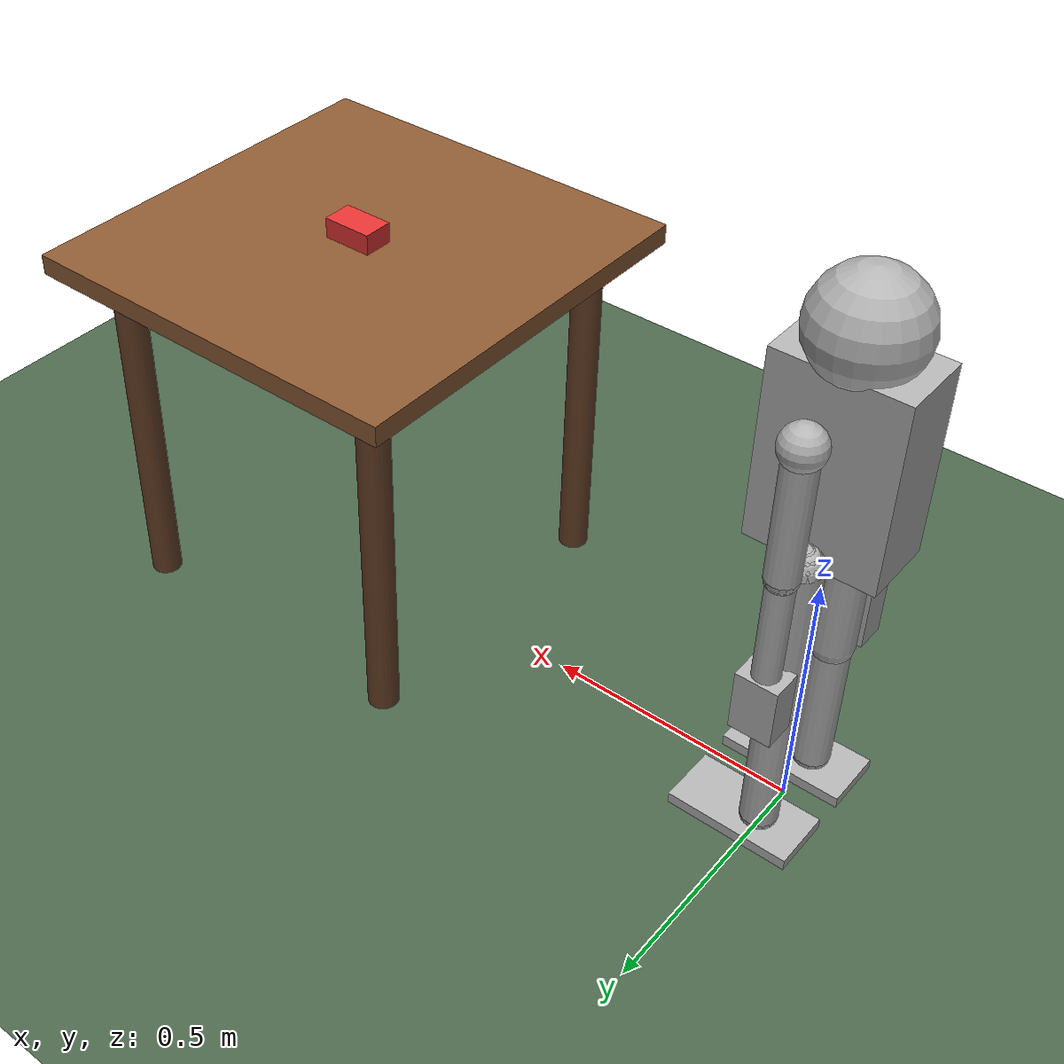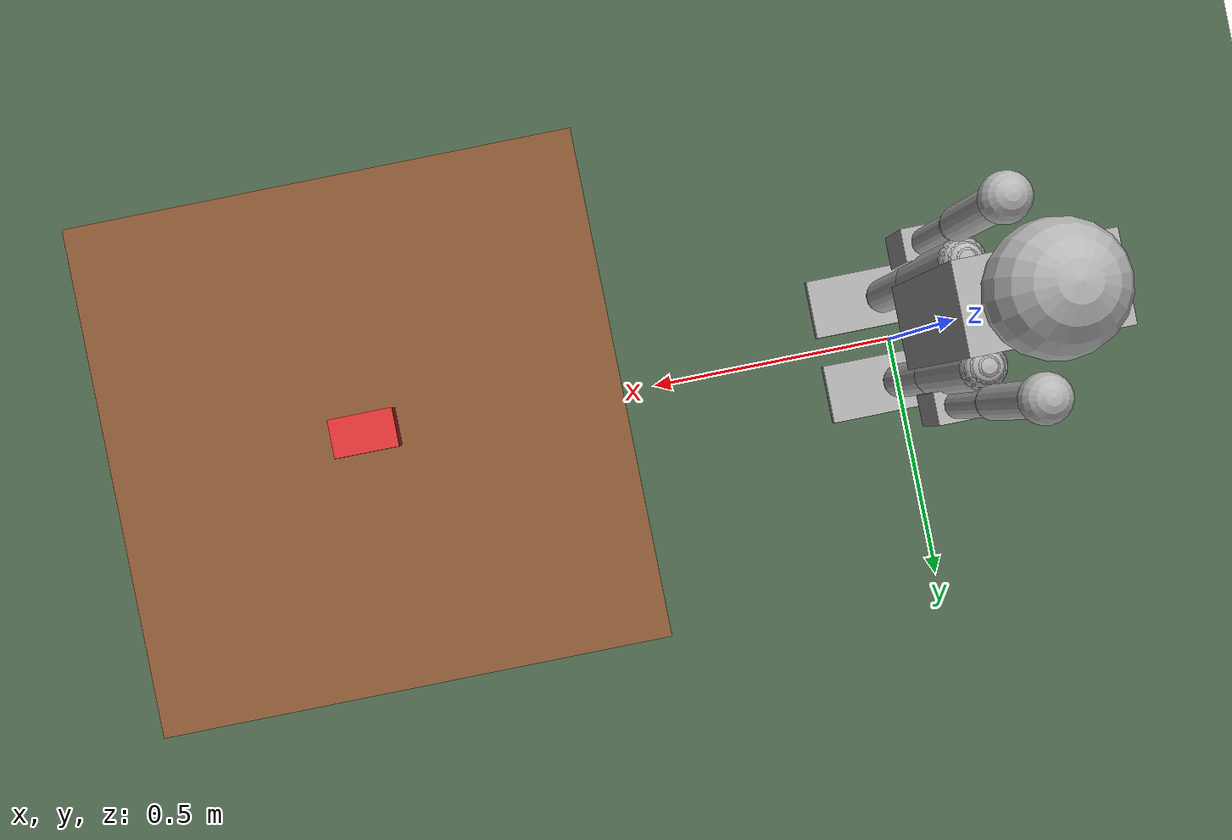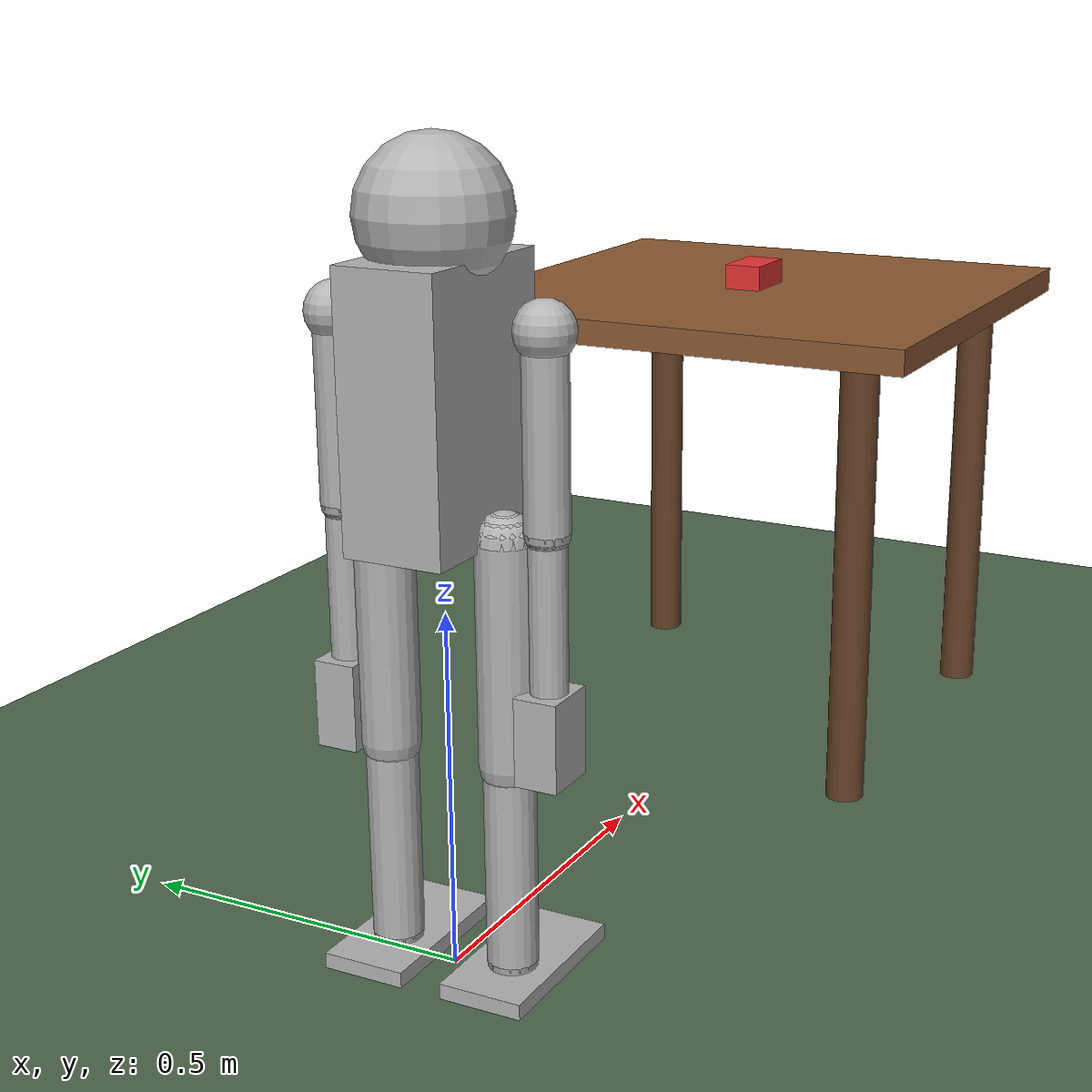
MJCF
<mujoco model="g1_loco_manip_scene">
  <!--
    Lab 8: Whole-Body Loco-Manipulation Scene
    G1 humanoid + ground plane + table + graspable box object
  -->

  <include file="g1_full.xml"/>

  <statistic center="0.5 0 0.5" extent="2.0"/>

  <visual>
    <headlight diffuse="0.6 0.6 0.6" ambient="0.3 0.3 0.3" specular="0 0 0"/>
    <rgba haze="0.15 0.25 0.35 1"/>
    <global azimuth="150" elevation="-20"/>
  </visual>

  <worldbody>
    <!-- Ground plane -->
    <geom name="ground" type="plane" size="10 10 0.1" rgba="0.3 0.4 0.3 1"
          condim="3" friction="1.0 0.005 0.0001"/>

    <!-- Table: 0.75m high, 1.0m in front of robot start -->
    <body name="table" pos="1.0 0 0.375">
      <geom name="table_top" type="box" size="0.4 0.4 0.02" pos="0 0 0.375"
            rgba="0.55 0.35 0.2 1" mass="20.0" condim="3" friction="0.8 0.005 0.0001"/>
      <geom name="table_leg1" type="cylinder" size="0.03 0.355" pos="0.3 0.3 0"
            rgba="0.4 0.25 0.15 1" mass="1.0"/>
      <geom name="table_leg2" type="cylinder" size="0.03 0.355" pos="-0.3 0.3 0"
            rgba="0.4 0.25 0.15 1" mass="1.0"/>
      <geom name="table_leg3" type="cylinder" size="0.03 0.355" pos="0.3 -0.3 0"
            rgba="0.4 0.25 0.15 1" mass="1.0"/>
      <geom name="table_leg4" type="cylinder" size="0.03 0.355" pos="-0.3 -0.3 0"
            rgba="0.4 0.25 0.15 1" mass="1.0"/>
    </body>

    <!-- Graspable box object on table -->
    <body name="box_object" pos="1.0 0 0.78">
      <freejoint name="box_joint"/>
      <geom name="box_geom" type="box" size="0.05 0.03 0.03"
            rgba="0.9 0.2 0.2 1" mass="0.5"
            condim="3" friction="1.0 0.005 0.0001"/>
      <inertial pos="0 0 0" mass="0.5" diaginertia="0.0003 0.0005 0.0005"/>
      <site name="box_center" pos="0 0 0" size="0.01"/>
    </body>

    <!-- Cameras -->
    <camera name="front" pos="2.0 0 1.0" xyaxes="0 1 0 -0.4 0 0.9"/>
    <camera name="side" pos="0 2.5 1.0" xyaxes="-1 0 0 0 -0.4 0.9"/>
    <camera name="top" pos="0.5 0 3.0" xyaxes="0 1 0 -1 0 0"/>
    <camera name="tracking" pos="1.5 1.5 1.2" xyaxes="-0.7 0.7 0 -0.3 -0.3 0.9"/>

    <!-- Lighting -->
    <light name="spotlight" pos="1 0 3" dir="0 0 -1" diffuse="0.8 0.8 0.8"
           specular="0.3 0.3 0.3" cutoff="60"/>
  </worldbody>

  <!-- Weld equality constraint for grasping (initially disabled) -->
  <equality>
    <weld name="grasp_weld" body1="left_wrist_pitch_link" body2="box_object"
          relpose="0 0 -0.1 1 0 0 0" active="false"/>
  </equality>

</mujoco>

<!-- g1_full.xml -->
<mujoco model="g1_full">

  <compiler angle="radian" autolimits="true"/>

  <option gravity="0 0 -9.81" timestep="0.002" integrator="implicitfast">
    <flag contact="enable" frictionloss="enable"/>
  </option>

  <default>
    <joint limited="true" damping="5.0" armature="0.01" frictionloss="0.1"/>
    <geom condim="3" friction="1.0 0.005 0.0001" rgba="0.7 0.7 0.7 1"/>
    <motor ctrllimited="true"/>
    <position kp="150" kv="10" ctrlrange="-10 10"/>
  </default>

  <asset>
    <texture type="skybox" builtin="gradient" rgb1="0.3 0.5 0.7" rgb2="0 0 0" width="512" height="3072"/>
    <texture type="2d" name="groundplane" builtin="checker" mark="edge" rgb1="0.2 0.3 0.4" rgb2="0.1 0.2 0.3" markrgb="0.8 0.8 0.8" width="300" height="300"/>
    <material name="groundplane" texture="groundplane" texuniform="true" texrepeat="5 5" reflectance="0.2"/>
    <material name="body_mat" rgba="0.3 0.3 0.8 1"/>
    <material name="link_mat" rgba="0.6 0.6 0.6 1"/>
    <material name="foot_mat" rgba="0.2 0.2 0.2 1"/>
  </asset>

  <worldbody>
    <!-- Floating base: torso -->
    <body name="torso" pos="0 0 0.78">
      <freejoint name="floating_base"/>
      <!-- Torso geometry -->
      <geom name="torso_geom" type="box" size="0.12 0.07 0.18" pos="0 0 0" material="body_mat" mass="10.0"/>
      <inertial pos="0 0 0" mass="10.0" diaginertia="0.08 0.06 0.05"/>

      <!-- WAIST -->
      <body name="waist" pos="0 0 -0.12">
        <joint name="waist_yaw" axis="0 0 1" range="-1.57 1.57" damping="8.0"/>
        <geom name="waist_geom" type="cylinder" size="0.06 0.04" pos="0 0 0" material="link_mat" mass="2.0"/>
        <inertial pos="0 0 0" mass="2.0" diaginertia="0.01 0.01 0.008"/>

        <!-- ===== LEFT LEG ===== -->
        <body name="left_hip_yaw_link" pos="0 0.09 -0.05">
          <joint name="left_hip_yaw" axis="0 0 1" range="-0.43 0.43" damping="8.0"/>
          <geom name="left_hip_yaw_geom" type="sphere" size="0.04" material="link_mat" mass="1.5"/>
          <inertial pos="0 0 0" mass="1.5" diaginertia="0.005 0.005 0.005"/>

          <body name="left_hip_roll_link" pos="0 0 0">
            <joint name="left_hip_roll" axis="1 0 0" range="-0.43 1.57" damping="8.0"/>
            <geom name="left_hip_roll_geom" type="sphere" size="0.04" material="link_mat" mass="0.5"/>
            <inertial pos="0 0 0" mass="0.5" diaginertia="0.002 0.002 0.002"/>

            <body name="left_hip_pitch_link" pos="0 0 0">
              <joint name="left_hip_pitch" axis="0 1 0" range="-1.57 1.57" damping="10.0"/>
              <geom name="left_thigh_geom" type="capsule" fromto="0 0 0 0 0 -0.3" size="0.04" material="link_mat" mass="3.5"/>
              <inertial pos="0 0 -0.15" mass="3.5" diaginertia="0.03 0.03 0.005"/>

              <body name="left_knee_link" pos="0 0 -0.3">
                <joint name="left_knee" axis="0 1 0" range="-0.26 2.53" damping="10.0"/>
                <geom name="left_shin_geom" type="capsule" fromto="0 0 0 0 0 -0.28" size="0.035" material="link_mat" mass="2.5"/>
                <inertial pos="0 0 -0.14" mass="2.5" diaginertia="0.02 0.02 0.003"/>

                <body name="left_ankle_pitch_link" pos="0 0 -0.28">
                  <joint name="left_ankle_pitch" axis="0 1 0" range="-0.87 0.52" damping="5.0"/>
                  <geom name="left_ankle_p_geom" type="sphere" size="0.035" material="link_mat" mass="0.5"/>
                  <inertial pos="0 0 0" mass="0.5" diaginertia="0.002 0.002 0.002"/>

                  <body name="left_ankle_roll_link" pos="0 0 0">
                    <joint name="left_ankle_roll" axis="1 0 0" range="-0.26 0.26" damping="3.0"/>
                    <geom name="left_foot_geom" type="box" size="0.12 0.06 0.02" pos="0.03 0 -0.03" material="foot_mat" mass="0.8"/>
                    <inertial pos="0.03 0 -0.03" mass="0.8" diaginertia="0.002 0.004 0.003"/>
                    <!-- Foot contact sites -->
                    <site name="left_foot_toe" pos="0.12 0 -0.04" size="0.01"/>
                    <site name="left_foot_heel" pos="-0.06 0 -0.04" size="0.01"/>
                    <site name="left_foot_center" pos="0.03 0 -0.04" size="0.01"/>
                  </body>
                </body>
              </body>
            </body>
          </body>
        </body>

        <!-- ===== RIGHT LEG ===== -->
        <body name="right_hip_yaw_link" pos="0 -0.09 -0.05">
          <joint name="right_hip_yaw" axis="0 0 1" range="-0.43 0.43" damping="8.0"/>
          <geom name="right_hip_yaw_geom" type="sphere" size="0.04" material="link_mat" mass="1.5"/>
          <inertial pos="0 0 0" mass="1.5" diaginertia="0.005 0.005 0.005"/>

          <body name="right_hip_roll_link" pos="0 0 0">
            <joint name="right_hip_roll" axis="1 0 0" range="-1.57 0.43" damping="8.0"/>
            <geom name="right_hip_roll_geom" type="sphere" size="0.04" material="link_mat" mass="0.5"/>
            <inertial pos="0 0 0" mass="0.5" diaginertia="0.002 0.002 0.002"/>

            <body name="right_hip_pitch_link" pos="0 0 0">
              <joint name="right_hip_pitch" axis="0 1 0" range="-1.57 1.57" damping="10.0"/>
              <geom name="right_thigh_geom" type="capsule" fromto="0 0 0 0 0 -0.3" size="0.04" material="link_mat" mass="3.5"/>
              <inertial pos="0 0 -0.15" mass="3.5" diaginertia="0.03 0.03 0.005"/>

              <body name="right_knee_link" pos="0 0 -0.3">
                <joint name="right_knee" axis="0 1 0" range="-0.26 2.53" damping="10.0"/>
                <geom name="right_shin_geom" type="capsule" fromto="0 0 0 0 0 -0.28" size="0.035" material="link_mat" mass="2.5"/>
                <inertial pos="0 0 -0.14" mass="2.5" diaginertia="0.02 0.02 0.003"/>

                <body name="right_ankle_pitch_link" pos="0 0 -0.28">
                  <joint name="right_ankle_pitch" axis="0 1 0" range="-0.87 0.52" damping="5.0"/>
                  <geom name="right_ankle_p_geom" type="sphere" size="0.035" material="link_mat" mass="0.5"/>
                  <inertial pos="0 0 0" mass="0.5" diaginertia="0.002 0.002 0.002"/>

                  <body name="right_ankle_roll_link" pos="0 0 0">
                    <joint name="right_ankle_roll" axis="1 0 0" range="-0.26 0.26" damping="3.0"/>
                    <geom name="right_foot_geom" type="box" size="0.12 0.06 0.02" pos="0.03 0 -0.03" material="foot_mat" mass="0.8"/>
                    <inertial pos="0.03 0 -0.03" mass="0.8" diaginertia="0.002 0.004 0.003"/>
                    <!-- Foot contact sites -->
                    <site name="right_foot_toe" pos="0.12 0 -0.04" size="0.01"/>
                    <site name="right_foot_heel" pos="-0.06 0 -0.04" size="0.01"/>
                    <site name="right_foot_center" pos="0.03 0 -0.04" size="0.01"/>
                  </body>
                </body>
              </body>
            </body>
          </body>
        </body>
      </body>

      <!-- ===== LEFT ARM ===== -->
      <body name="left_shoulder_link" pos="0 0.15 0.1">
        <joint name="left_shoulder_pitch" axis="0 1 0" range="-3.14 3.14" damping="5.0"/>
        <geom name="left_shoulder_geom" type="sphere" size="0.04" material="link_mat" mass="1.0"/>
        <inertial pos="0 0 0" mass="1.0" diaginertia="0.003 0.003 0.003"/>

        <body name="left_shoulder_roll_link" pos="0 0 0">
          <joint name="left_shoulder_roll" axis="1 0 0" range="-1.57 1.57" damping="5.0"/>
          <geom name="left_upper_arm_geom" type="capsule" fromto="0 0 0 0 0 -0.25" size="0.03" material="link_mat" mass="1.5"/>
          <inertial pos="0 0 -0.125" mass="1.5" diaginertia="0.01 0.01 0.002"/>

          <body name="left_shoulder_yaw_link" pos="0 0 -0.25">
            <joint name="left_shoulder_yaw" axis="0 0 1" range="-1.57 1.57" damping="3.0"/>
            <geom name="left_shoulder_y_geom" type="sphere" size="0.03" material="link_mat" mass="0.3"/>
            <inertial pos="0 0 0" mass="0.3" diaginertia="0.001 0.001 0.001"/>

            <body name="left_elbow_link" pos="0 0 0">
              <joint name="left_elbow" axis="0 1 0" range="-2.53 0.0" damping="3.0"/>
              <geom name="left_forearm_geom" type="capsule" fromto="0 0 0 0 0 -0.22" size="0.025" material="link_mat" mass="1.0"/>
              <inertial pos="0 0 -0.11" mass="1.0" diaginertia="0.005 0.005 0.001"/>

              <body name="left_wrist_roll_link" pos="0 0 -0.22">
                <joint name="left_wrist_roll" axis="0 0 1" range="-1.57 1.57" damping="2.0"/>
                <geom name="left_wrist_r_geom" type="sphere" size="0.025" material="link_mat" mass="0.2"/>
                <inertial pos="0 0 0" mass="0.2" diaginertia="0.0005 0.0005 0.0005"/>

                <body name="left_wrist_pitch_link" pos="0 0 0">
                  <joint name="left_wrist_pitch" axis="0 1 0" range="-1.57 1.57" damping="2.0"/>
                  <geom name="left_hand_geom" type="box" size="0.04 0.03 0.06" pos="0 0 -0.05" material="body_mat" mass="0.4"/>
                  <inertial pos="0 0 -0.05" mass="0.4" diaginertia="0.001 0.001 0.0008"/>
                  <site name="left_hand" pos="0 0 -0.1" size="0.02" rgba="0 1 0 0.5"/>
                </body>
              </body>
            </body>
          </body>
        </body>
      </body>

      <!-- ===== RIGHT ARM ===== -->
      <body name="right_shoulder_link" pos="0 -0.15 0.1">
        <joint name="right_shoulder_pitch" axis="0 1 0" range="-3.14 3.14" damping="5.0"/>
        <geom name="right_shoulder_geom" type="sphere" size="0.04" material="link_mat" mass="1.0"/>
        <inertial pos="0 0 0" mass="1.0" diaginertia="0.003 0.003 0.003"/>

        <body name="right_shoulder_roll_link" pos="0 0 0">
          <joint name="right_shoulder_roll" axis="1 0 0" range="-1.57 1.57" damping="5.0"/>
          <geom name="right_upper_arm_geom" type="capsule" fromto="0 0 0 0 0 -0.25" size="0.03" material="link_mat" mass="1.5"/>
          <inertial pos="0 0 -0.125" mass="1.5" diaginertia="0.01 0.01 0.002"/>

          <body name="right_shoulder_yaw_link" pos="0 0 -0.25">
            <joint name="right_shoulder_yaw" axis="0 0 1" range="-1.57 1.57" damping="3.0"/>
            <geom name="right_shoulder_y_geom" type="sphere" size="0.03" material="link_mat" mass="0.3"/>
            <inertial pos="0 0 0" mass="0.3" diaginertia="0.001 0.001 0.001"/>

            <body name="right_elbow_link" pos="0 0 0">
              <joint name="right_elbow" axis="0 1 0" range="-2.53 0.0" damping="3.0"/>
              <geom name="right_forearm_geom" type="capsule" fromto="0 0 0 0 0 -0.22" size="0.025" material="link_mat" mass="1.0"/>
              <inertial pos="0 0 -0.11" mass="1.0" diaginertia="0.005 0.005 0.001"/>

              <body name="right_wrist_roll_link" pos="0 0 -0.22">
                <joint name="right_wrist_roll" axis="0 0 1" range="-1.57 1.57" damping="2.0"/>
                <geom name="right_wrist_r_geom" type="sphere" size="0.025" material="link_mat" mass="0.2"/>
                <inertial pos="0 0 0" mass="0.2" diaginertia="0.0005 0.0005 0.0005"/>

                <body name="right_wrist_pitch_link" pos="0 0 0">
                  <joint name="right_wrist_pitch" axis="0 1 0" range="-1.57 1.57" damping="2.0"/>
                  <geom name="right_hand_geom" type="box" size="0.04 0.03 0.06" pos="0 0 -0.05" material="body_mat" mass="0.4"/>
                  <inertial pos="0 0 -0.05" mass="0.4" diaginertia="0.001 0.001 0.0008"/>
                  <site name="right_hand" pos="0 0 -0.1" size="0.02" rgba="1 0 0 0.5"/>
                </body>
              </body>
            </body>
          </body>
        </body>
      </body>

      <!-- HEAD (no joints - rigid) -->
      <body name="head" pos="0 0 0.23">
        <geom name="head_geom" type="sphere" size="0.1" material="body_mat" mass="1.5"/>
        <inertial pos="0 0 0" mass="1.5" diaginertia="0.006 0.005 0.005"/>
        <site name="head_imu" pos="0 0 0" size="0.01"/>
      </body>
    </body>
  </worldbody>

  <!-- ===== ACTUATORS ===== -->
  <!-- All actuators use position control with PD gains -->
  <!-- Waist -->
  <actuator>
    <position name="waist_yaw_act" joint="waist_yaw" kp="200" kv="15" ctrlrange="-1.57 1.57"/>

    <!-- Left leg -->
    <position name="left_hip_yaw_act" joint="left_hip_yaw" kp="300" kv="20" ctrlrange="-0.43 0.43"/>
    <position name="left_hip_roll_act" joint="left_hip_roll" kp="300" kv="20" ctrlrange="-0.43 1.57"/>
    <position name="left_hip_pitch_act" joint="left_hip_pitch" kp="400" kv="25" ctrlrange="-1.57 1.57"/>
    <position name="left_knee_act" joint="left_knee" kp="400" kv="25" ctrlrange="-0.26 2.53"/>
    <position name="left_ankle_pitch_act" joint="left_ankle_pitch" kp="200" kv="15" ctrlrange="-0.87 0.52"/>
    <position name="left_ankle_roll_act" joint="left_ankle_roll" kp="150" kv="10" ctrlrange="-0.26 0.26"/>

    <!-- Right leg -->
    <position name="right_hip_yaw_act" joint="right_hip_yaw" kp="300" kv="20" ctrlrange="-0.43 0.43"/>
    <position name="right_hip_roll_act" joint="right_hip_roll" kp="300" kv="20" ctrlrange="-1.57 0.43"/>
    <position name="right_hip_pitch_act" joint="right_hip_pitch" kp="400" kv="25" ctrlrange="-1.57 1.57"/>
    <position name="right_knee_act" joint="right_knee" kp="400" kv="25" ctrlrange="-0.26 2.53"/>
    <position name="right_ankle_pitch_act" joint="right_ankle_pitch" kp="200" kv="15" ctrlrange="-0.87 0.52"/>
    <position name="right_ankle_roll_act" joint="right_ankle_roll" kp="150" kv="10" ctrlrange="-0.26 0.26"/>

    <!-- Left arm -->
    <position name="left_shoulder_pitch_act" joint="left_shoulder_pitch" kp="100" kv="8" ctrlrange="-3.14 3.14"/>
    <position name="left_shoulder_roll_act" joint="left_shoulder_roll" kp="100" kv="8" ctrlrange="-1.57 1.57"/>
    <position name="left_shoulder_yaw_act" joint="left_shoulder_yaw" kp="80" kv="6" ctrlrange="-1.57 1.57"/>
    <position name="left_elbow_act" joint="left_elbow" kp="80" kv="6" ctrlrange="-2.53 0.0"/>
    <position name="left_wrist_roll_act" joint="left_wrist_roll" kp="40" kv="4" ctrlrange="-1.57 1.57"/>
    <position name="left_wrist_pitch_act" joint="left_wrist_pitch" kp="40" kv="4" ctrlrange="-1.57 1.57"/>

    <!-- Right arm -->
    <position name="right_shoulder_pitch_act" joint="right_shoulder_pitch" kp="100" kv="8" ctrlrange="-3.14 3.14"/>
    <position name="right_shoulder_roll_act" joint="right_shoulder_roll" kp="100" kv="8" ctrlrange="-1.57 1.57"/>
    <position name="right_shoulder_yaw_act" joint="right_shoulder_yaw" kp="80" kv="6" ctrlrange="-1.57 1.57"/>
    <position name="right_elbow_act" joint="right_elbow" kp="80" kv="6" ctrlrange="-2.53 0.0"/>
    <position name="right_wrist_roll_act" joint="right_wrist_roll" kp="40" kv="4" ctrlrange="-1.57 1.57"/>
    <position name="right_wrist_pitch_act" joint="right_wrist_pitch" kp="40" kv="4" ctrlrange="-1.57 1.57"/>
  </actuator>

  <!-- Sensors -->
  <sensor>
    <framepos name="torso_pos" objtype="body" objname="torso"/>
    <framequat name="torso_quat" objtype="body" objname="torso"/>
    <framelinvel name="torso_linvel" objtype="body" objname="torso"/>
    <frameangvel name="torso_angvel" objtype="body" objname="torso"/>
    <framepos name="left_foot_pos" objtype="site" objname="left_foot_center"/>
    <framepos name="right_foot_pos" objtype="site" objname="right_foot_center"/>
    <framepos name="left_hand_pos" objtype="site" objname="left_hand"/>
    <framepos name="right_hand_pos" objtype="site" objname="right_hand"/>
    <subtreecom name="total_com" body="torso"/>
  </sensor>

</mujoco>
